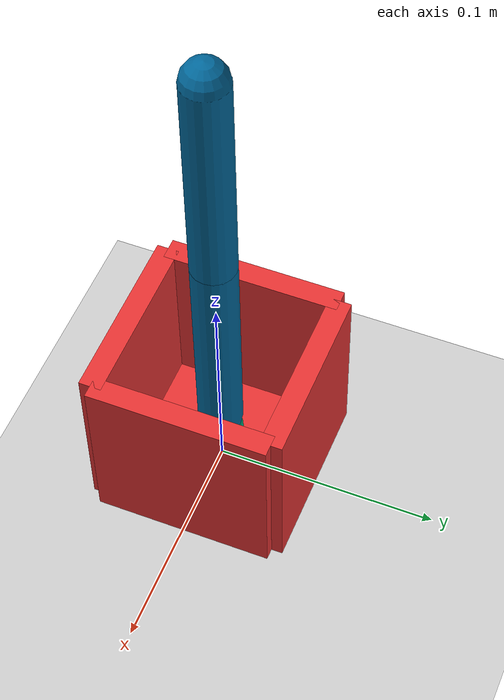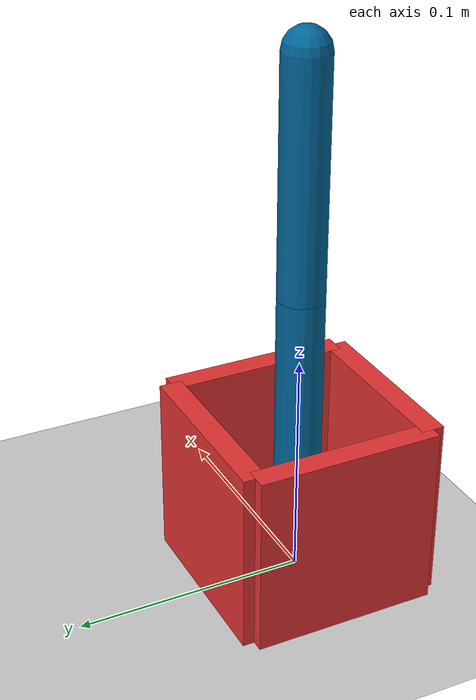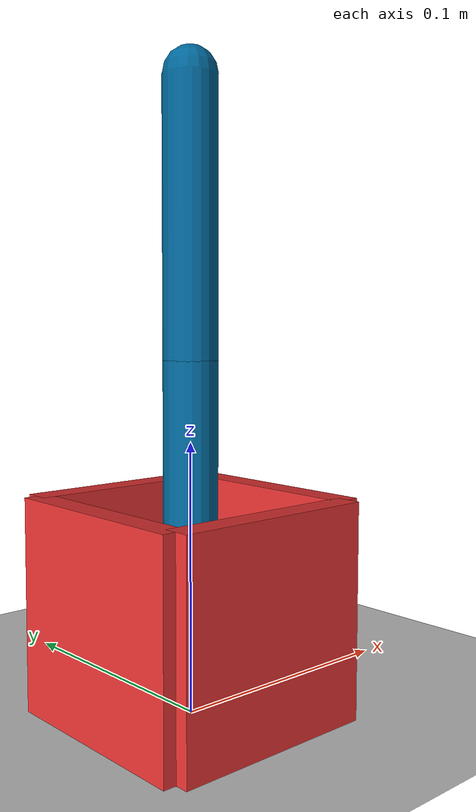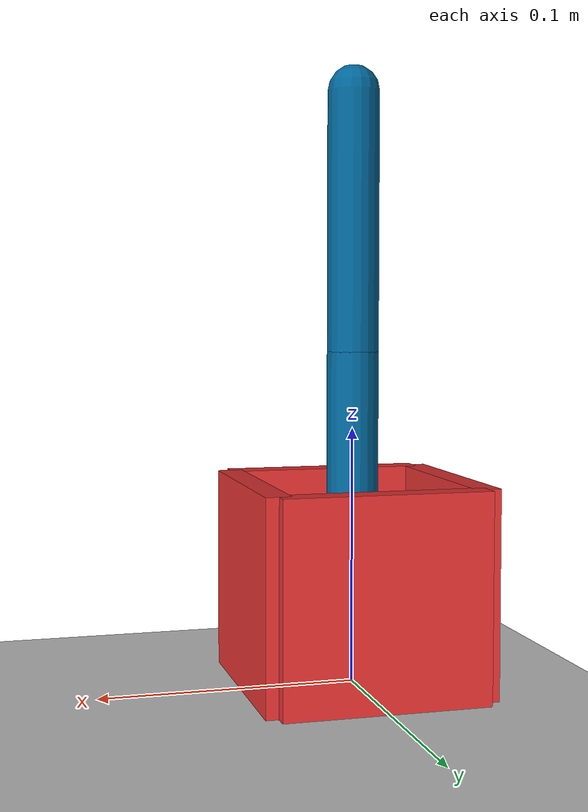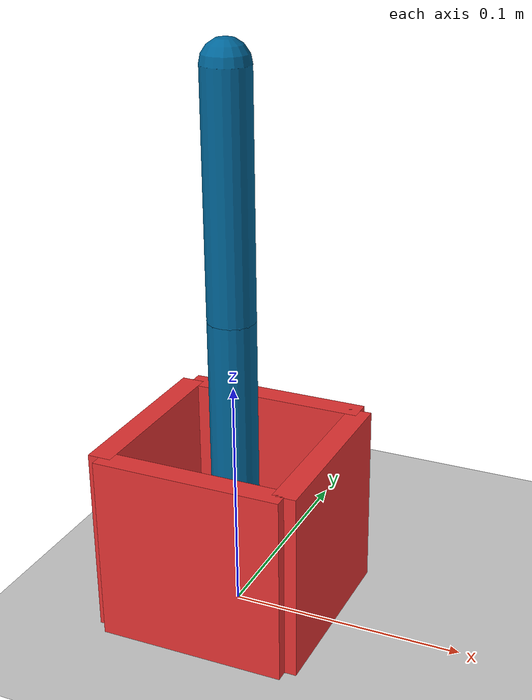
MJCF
<mujoco model="reacher">
	<compiler angle="radian" inertiafromgeom="true"/>
	<default>
		<joint armature="1" damping="1" limited="true"/>
		<geom contype="0" friction="1 0.1 0.1" rgba="0.7 0.7 0 1"/>
	</default>
	<option gravity="0 0 -9.8" integrator="RK4" timestep="0.01"/>
	<worldbody>
		<!-- Arena -->
		<geom conaffinity="1" contype="1" name="ground" pos="0 0 0" rgba="0.8 0.8 0.8 1" size="1 1 10" type="plane"/>
		<body name="body0" pos="0 0 0.23">
			<geom conaffinity="1" contype="1" fromto="0 0 0 0 0 -0.1" name="link0" rgba="0.0 0.4 0.6 1" size=".01" type="capsule"/>
			<joint axis="0 1 0" limited="false" name="joint0" pos="0 0 0" type="hinge"/>
			<body name="body1" pos="0 0 -0.1">
				<joint axis="0 1 0" limited="false" name="joint1" pos="0 0 0" type="hinge"/>
				<geom conaffinity="1" contype="1" fromto="0 0 0 0 0 -0.1" name="link1" rgba="0.0 0.4 0.6 1" size=".01" type="capsule"/>
				<body name="fingertip" pos="0 0 -0.11">
					<geom conaffinity="1" contype="1" name="fingertip" pos="0 0 0" rgba="0.0 0.8 0.6 1" size=".01" type="sphere"/>
				</body>
			</body>
		</body>
		<!-- Target -->
		<body name="target" pos="0.00 0.00 .00">
			<geom conaffinity="1" contype="1" size="0.04 0.04 0.005" pos="0 0 0" name="target_bottom" rgba="0.9 0.2 0.2 1" type="box"/>
			<geom conaffinity="1" contype="1" size="0.005 0.04 0.04" pos="-0.04 0 0.04" name="target_side1" rgba="0.9 0.2 0.2 1" type="box"/>
			<geom conaffinity="1" contype="1" size="0.04 0.005 0.04" pos="0 0.04 0.04" name="target_side2" rgba="0.9 0.2 0.2 1" type="box"/>
			<geom conaffinity="1" contype="1" size="0.005 0.04 0.04" pos="0.04 0 0.04" name="target_side3" rgba="0.9 0.2 0.2 1" type="box"/>
			<geom conaffinity="1" contype="1" size="0.04 0.005 0.04" pos="0 -0.04 0.04" name="target_side4" rgba="0.9 0.2 0.2 1" type="box"/>
			<joint limited="false" type="free" />

		</body>
	</worldbody>
	<actuator>
		<motor ctrllimited="true" ctrlrange="-1.0 1.0" gear="200.0" joint="joint0"/>
		<motor ctrllimited="true" ctrlrange="-1.0 1.0" gear="200.0" joint="joint1"/>
	</actuator>
</mujoco>
